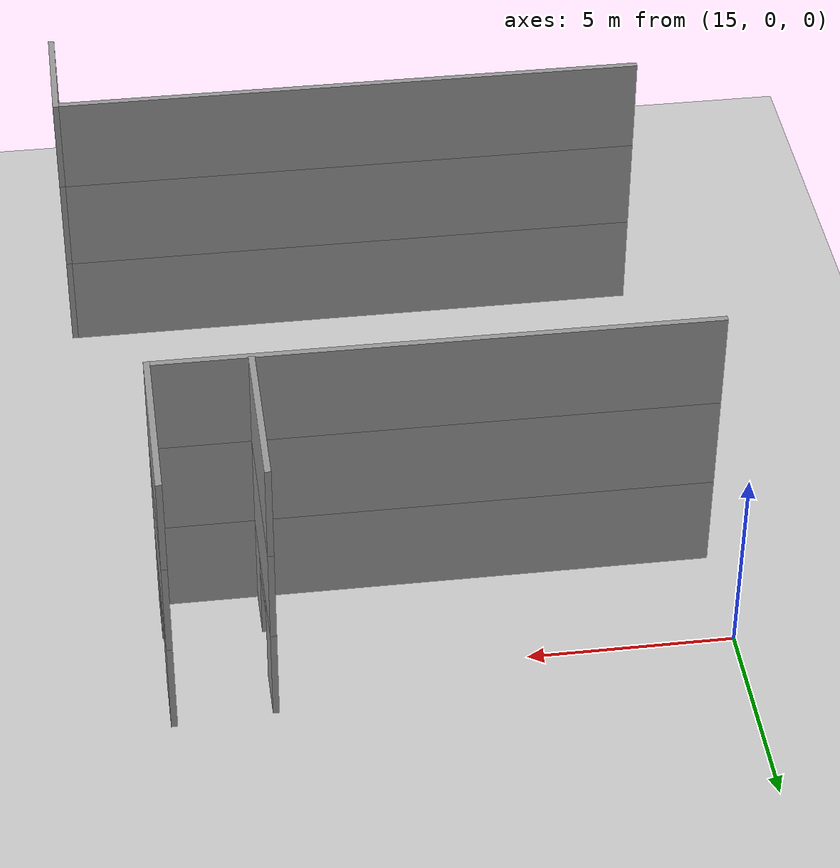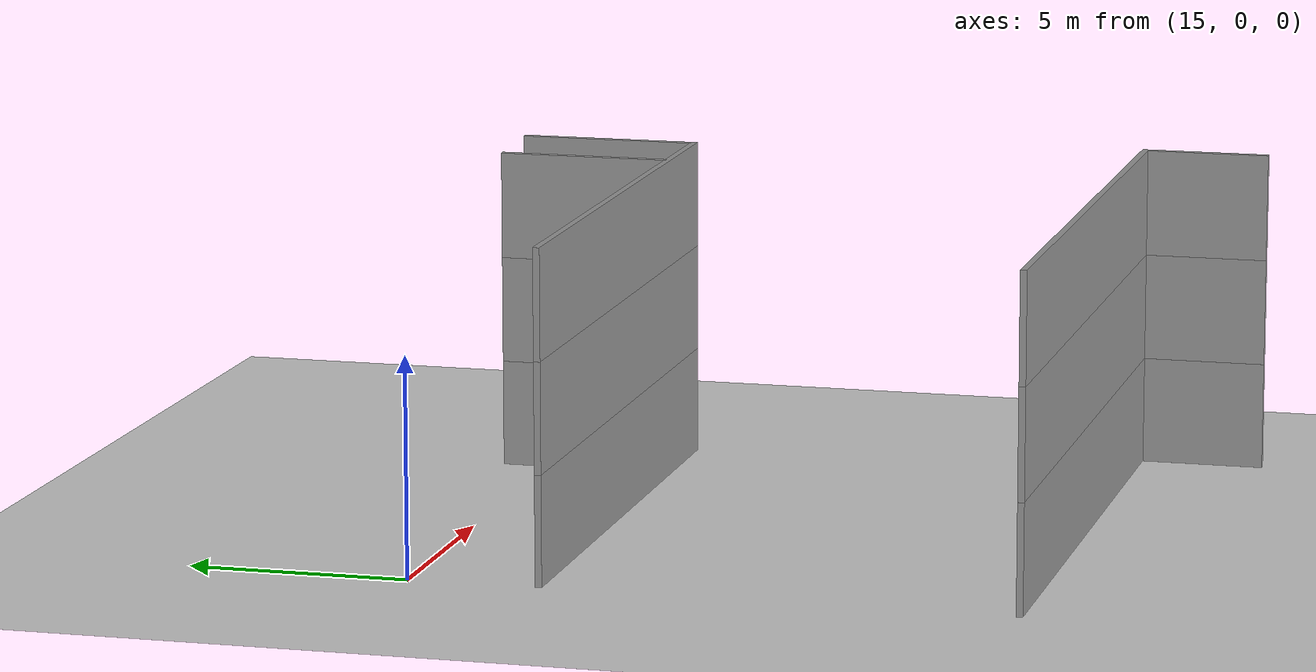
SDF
<sdf version="1.7">
 <world name="default">
  <model name="ground_plane">
   <pose>30 30 0 0 -0 0</pose>
   <static>1</static>
   <link name="link">
    <collision name="collision">
     <geometry><plane><normal>0 0 1</normal><size>100 100</size></plane></geometry>
     <surface><friction><ode><mu>100</mu><mu2>50</mu2></ode></friction></surface>
    </collision>
    <visual name="visual">
     <cast_shadows>0</cast_shadows>
     <geometry><plane><normal>0 0 1</normal><size>100 100</size></plane></geometry>
     <material>
      <script><uri>file://media/materials/scripts/gazebo.material</uri><name>Gazebo/Grey</name></script>
     </material>
    </visual>
   </link>
  </model>
  <model name="Soterrani_AT">
   <pose>30.7763 24.7178 0 0 0 -1.57187</pose>
   <link name="Wall_199">
    <collision name="Wall_199_Collision">
     <geometry><box><size>4.25 0.15 2.5</size></box></geometry>
     <pose>0 0 1.25 0 -0 0</pose>
    </collision>
    <visual name="Wall_199_Visual">
     <pose>0 0 1.25 0 -0 0</pose>
     <geometry><box><size>4.25 0.15 2.5</size></box></geometry>
     <material>
      <script><uri>file://media/materials/scripts/gazebo.material</uri><name>Gazebo/Grey</name></script>
      <ambient>1 1 1 1</ambient>
     </material>
     <meta><layer>1</layer></meta>
    </visual>
    <pose>25.625 -2.2556 2.5 0 -0 0</pose>
   </link>
   <link name="Wall_200">
    <collision name="Wall_200_Collision">
     <geometry><box><size>13.5 0.15 2.5</size></box></geometry>
     <pose>0 0 1.25 0 -0 0</pose>
    </collision>
    <visual name="Wall_200_Visual">
     <pose>0 0 1.25 0 -0 0</pose>
     <geometry><box><size>13.5 0.15 2.5</size></box></geometry>
     <material>
      <script><uri>file://media/materials/scripts/gazebo.material</uri><name>Gazebo/Grey</name></script>
      <ambient>1 1 1 1</ambient>
     </material>
     <meta><layer>1</layer></meta>
    </visual>
    <pose>27.675 -8.9306 2.5 0 -0 -1.5708</pose>
   </link>
   <link name="Wall_201">
    <collision name="Wall_201_Collision">
     <geometry><box><size>4 0.15 2.5</size></box></geometry>
     <pose>0 0 1.25 0 -0 0</pose>
    </collision>
    <visual name="Wall_201_Visual">
     <pose>0 0 1.25 0 -0 0</pose>
     <geometry><box><size>4 0.15 2.5</size></box></geometry>
     <material>
      <script><uri>file://media/materials/scripts/gazebo.material</uri><name>Gazebo/Grey</name></script>
      <ambient>1 1 1 1</ambient>
     </material>
     <meta><layer>1</layer></meta>
    </visual>
    <pose>25.6446 -4.64164 2.5 0 -0 0</pose>
   </link>
   <link name="Wall_202">
    <collision name="Wall_202_Collision">
     <geometry><box><size>3 0.15 2.5</size></box></geometry>
     <pose>0 0 1.25 0 -0 0</pose>
    </collision>
    <visual name="Wall_202_Visual">
     <pose>0 0 1.25 0 -0 0</pose>
     <geometry><box><size>3 0.15 2.5</size></box></geometry>
     <material>
      <script><uri>file://media/materials/scripts/gazebo.material</uri><name>Gazebo/Grey</name></script>
      <ambient>1 1 1 1</ambient>
     </material>
     <meta><layer>1</layer></meta>
    </visual>
    <pose>39.6763 -0.615775 2.5 0 -0 3.14159</pose>
   </link>
   <link name="Wall_203">
    <collision name="Wall_203_Collision">
     <geometry><box><size>15 0.15 2.5</size></box></geometry>
     <pose>0 0 1.25 0 -0 0</pose>
    </collision>
    <visual name="Wall_203_Visual">
     <pose>0 0 1.25 0 -0 0</pose>
     <geometry><box><size>15 0.15 2.5</size></box></geometry>
     <material>
      <script><uri>file://media/materials/scripts/gazebo.material</uri><name>Gazebo/Grey</name></script>
      <ambient>1 1 1 1</ambient>
     </material>
     <meta><layer>1</layer></meta>
    </visual>
    <pose>38.2513 -8.04078 2.5 0 -0 -1.5708</pose>
   </link>
   <link name="Wall_269">
    <collision name="Wall_269_Collision">
     <geometry><box><size>4.25 0.15 2.5</size></box></geometry>
     <pose>0 0 1.25 0 -0 0</pose>
    </collision>
    <visual name="Wall_269_Visual">
     <pose>0 0 1.25 0 -0 0</pose>
     <geometry><box><size>4.25 0.15 2.5</size></box></geometry>
     <material>
      <script><uri>file://media/materials/scripts/gazebo.material</uri><name>Gazebo/Grey</name></script>
      <ambient>1 1 1 1</ambient>
     </material>
     <meta><layer>2</layer></meta>
    </visual>
    <pose>25.625 -2.2556 5 0 -0 0</pose>
   </link>
   <link name="Wall_270">
    <collision name="Wall_270_Collision">
     <geometry><box><size>13.5 0.15 2.5</size></box></geometry>
     <pose>0 0 1.25 0 -0 0</pose>
    </collision>
    <visual name="Wall_270_Visual">
     <pose>0 0 1.25 0 -0 0</pose>
     <geometry><box><size>13.5 0.15 2.5</size></box></geometry>
     <material>
      <script><uri>file://media/materials/scripts/gazebo.material</uri><name>Gazebo/Grey</name></script>
      <ambient>1 1 1 1</ambient>
     </material>
     <meta><layer>2</layer></meta>
    </visual>
    <pose>27.675 -8.9306 5 0 -0 -1.5708</pose>
   </link>
   <link name="Wall_271">
    <collision name="Wall_271_Collision">
     <geometry><box><size>4 0.15 2.5</size></box></geometry>
     <pose>0 0 1.25 0 -0 0</pose>
    </collision>
    <visual name="Wall_271_Visual">
     <pose>0 0 1.25 0 -0 0</pose>
     <geometry><box><size>4 0.15 2.5</size></box></geometry>
     <material>
      <script><uri>file://media/materials/scripts/gazebo.material</uri><name>Gazebo/Grey</name></script>
      <ambient>1 1 1 1</ambient>
     </material>
     <meta><layer>2</layer></meta>
    </visual>
    <pose>25.6446 -4.64164 5 0 -0 0</pose>
   </link>
   <link name="Wall_272">
    <collision name="Wall_272_Collision">
     <geometry><box><size>3 0.15 2.5</size></box></geometry>
     <pose>0 0 1.25 0 -0 0</pose>
    </collision>
    <visual name="Wall_272_Visual">
     <pose>0 0 1.25 0 -0 0</pose>
     <geometry><box><size>3 0.15 2.5</size></box></geometry>
     <material>
      <script><uri>file://media/materials/scripts/gazebo.material</uri><name>Gazebo/Grey</name></script>
      <ambient>1 1 1 1</ambient>
     </material>
     <meta><layer>2</layer></meta>
    </visual>
    <pose>39.6763 -0.615775 5 0 -0 3.14159</pose>
   </link>
   <link name="Wall_273">
    <collision name="Wall_273_Collision">
     <geometry><box><size>15 0.15 2.5</size></box></geometry>
     <pose>0 0 1.25 0 -0 0</pose>
    </collision>
    <visual name="Wall_273_Visual">
     <pose>0 0 1.25 0 -0 0</pose>
     <geometry><box><size>15 0.15 2.5</size></box></geometry>
     <material>
      <script><uri>file://media/materials/scripts/gazebo.material</uri><name>Gazebo/Grey</name></script>
      <ambient>1 1 1 1</ambient>
     </material>
     <meta><layer>2</layer></meta>
    </visual>
    <pose>38.2513 -8.04078 5 0 -0 -1.5708</pose>
   </link>
   <link name="Wall_81">
    <pose>25.625 -2.2556 0 0 -0 0</pose>
    <visual name="Wall_81_Visual_0">
     <pose>-1.41343 0 1.25 0 -0 0</pose>
     <geometry><box><size>1.42314 0.15 2.5</size></box></geometry>
     <material>
      <script><uri>file://media/materials/scripts/gazebo.material</uri><name>Gazebo/Grey</name></script>
      <ambient>1 1 1 1</ambient>
     </material>
     <meta><layer>0</layer></meta>
    </visual>
    <collision name="Wall_81_Collision_0">
     <geometry><box><size>1.42314 0.15 2.5</size></box></geometry>
     <pose>-1.41343 0 1.25 0 -0 0</pose>
    </collision>
    <visual name="Wall_81_Visual_1">
     <pose>1.46157 0 1.25 0 -0 0</pose>
     <geometry><box><size>1.32686 0.15 2.5</size></box></geometry>
     <material>
      <script><uri>file://media/materials/scripts/gazebo.material</uri><name>Gazebo/Grey</name></script>
      <ambient>1 1 1 1</ambient>
     </material>
     <meta><layer>0</layer></meta>
    </visual>
    <collision name="Wall_81_Collision_1">
     <geometry><box><size>1.32686 0.15 2.5</size></box></geometry>
     <pose>1.46157 0 1.25 0 -0 0</pose>
    </collision>
    <visual name="Wall_81_Visual_2">
     <pose>0.048141 0 2.25 0 -0 0</pose>
     <geometry><box><size>1.5 0.15 0.5</size></box></geometry>
     <material>
      <script><uri>file://media/materials/scripts/gazebo.material</uri><name>Gazebo/Grey</name></script>
      <ambient>1 1 1 1</ambient>
     </material>
     <meta><layer>0</layer></meta>
    </visual>
    <collision name="Wall_81_Collision_2">
     <geometry><box><size>1.5 0.15 0.5</size></box></geometry>
     <pose>0.048141 0 2.25 0 -0 0</pose>
    </collision>
   </link>
   <link name="Wall_82">
    <collision name="Wall_82_Collision">
     <geometry><box><size>13.5 0.15 2.5</size></box></geometry>
     <pose>0 0 1.25 0 -0 0</pose>
    </collision>
    <visual name="Wall_82_Visual">
     <pose>0 0 1.25 0 -0 0</pose>
     <geometry><box><size>13.5 0.15 2.5</size></box></geometry>
     <material>
      <script><uri>file://media/materials/scripts/gazebo.material</uri><name>Gazebo/Grey</name></script>
      <ambient>1 1 1 1</ambient>
     </material>
     <meta><layer>0</layer></meta>
    </visual>
    <pose>27.675 -8.9306 0 0 -0 -1.5708</pose>
   </link>
   <link name="Wall_84">
    <pose>25.6446 -4.64164 0 0 -0 0</pose>
    <visual name="Wall_84_Visual_0">
     <pose>-1.38684 0 1.25 0 -0 0</pose>
     <geometry><box><size>1.22632 0.15 2.5</size></box></geometry>
     <material>
      <script><uri>file://media/materials/scripts/gazebo.material</uri><name>Gazebo/Grey</name></script>
      <ambient>1 1 1 1</ambient>
     </material>
     <meta><layer>0</layer></meta>
    </visual>
    <collision name="Wall_84_Collision_0">
     <geometry><box><size>1.22632 0.15 2.5</size></box></geometry>
     <pose>-1.38684 0 1.25 0 -0 0</pose>
    </collision>
    <visual name="Wall_84_Visual_1">
     <pose>1.36316 0 1.25 0 -0 0</pose>
     <geometry><box><size>1.27368 0.15 2.5</size></box></geometry>
     <material>
      <script><uri>file://media/materials/scripts/gazebo.material</uri><name>Gazebo/Grey</name></script>
      <ambient>1 1 1 1</ambient>
     </material>
     <meta><layer>0</layer></meta>
    </visual>
    <collision name="Wall_84_Collision_1">
     <geometry><box><size>1.27368 0.15 2.5</size></box></geometry>
     <pose>1.36316 0 1.25 0 -0 0</pose>
    </collision>
    <visual name="Wall_84_Visual_2">
     <pose>-0.023685 0 2.25 0 -0 0</pose>
     <geometry><box><size>1.5 0.15 0.5</size></box></geometry>
     <material>
      <script><uri>file://media/materials/scripts/gazebo.material</uri><name>Gazebo/Grey</name></script>
      <ambient>1 1 1 1</ambient>
     </material>
     <meta><layer>0</layer></meta>
    </visual>
    <collision name="Wall_84_Collision_2">
     <geometry><box><size>1.5 0.15 0.5</size></box></geometry>
     <pose>-0.023685 0 2.25 0 -0 0</pose>
    </collision>
   </link>
   <link name="Wall_86">
    <collision name="Wall_86_Collision">
     <geometry><box><size>3 0.15 2.5</size></box></geometry>
     <pose>0 0 1.25 0 -0 0</pose>
    </collision>
    <visual name="Wall_86_Visual">
     <pose>0 0 1.25 0 -0 0</pose>
     <geometry><box><size>3 0.15 2.5</size></box></geometry>
     <material>
      <script><uri>file://media/materials/scripts/gazebo.material</uri><name>Gazebo/Grey</name></script>
      <ambient>1 1 1 1</ambient>
     </material>
     <meta><layer>0</layer></meta>
    </visual>
    <pose>39.6763 -0.615775 0 0 -0 3.14159</pose>
   </link>
   <link name="Wall_87">
    <collision name="Wall_87_Collision">
     <geometry><box><size>15 0.15 2.5</size></box></geometry>
     <pose>0 0 1.25 0 -0 0</pose>
    </collision>
    <visual name="Wall_87_Visual">
     <pose>0 0 1.25 0 -0 0</pose>
     <geometry><box><size>15 0.15 2.5</size></box></geometry>
     <material>
      <script><uri>file://media/materials/scripts/gazebo.material</uri><name>Gazebo/Grey</name></script>
      <ambient>1 1 1 1</ambient>
     </material>
     <meta><layer>0</layer></meta>
    </visual>
    <pose>38.2513 -8.04078 0 0 -0 -1.5708</pose>
   </link>
   <static>1</static>
  </model>
 </world>
</sdf>
